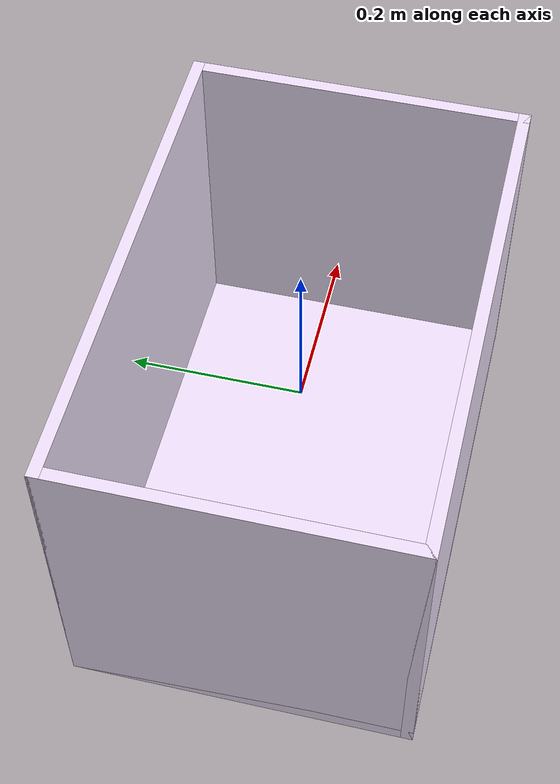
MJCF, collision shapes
<mujoco model="tote_b01_60x40x40cm">
  <asset>
    <mesh name="tote_b01_mesh" file="siemens/meshes/Tote_B01_60x40x40cm_PR_V_NVD_01.obj" scale="1 1 1"/>
    <material name="tote_b01_visual_mat" rgba="0.94 0.88 0.98 1" specular="0.25" shininess="0.18"/>
    <material name="tote_b01_collision_mat" rgba="0.94 0.88 0.98 0.30" specular="0.05" shininess="0.05"/>
  </asset>

  <worldbody>
    <body>
      <body name="object">
        <inertial pos="0 0 0" mass="0.55" diaginertia="0.0080 0.0120 0.0140"/>

        <geom name="visual"
              type="mesh"
              mesh="tote_b01_mesh"
              material="tote_b01_visual_mat"
              quat="0.707106781 0.707106781 0 0"
              contype="0"
              conaffinity="0"
              group="1"/>

        <geom name="tote_b01_col_bottom" type="box"
              pos="0 0 -0.191"
              size="0.30 0.20 0.009"
              material="tote_b01_collision_mat"
              friction="1.0 0.005 0.0001"
              group="0"/>
        <geom name="tote_b01_col_front" type="box"
              pos="0 -0.193 0"
              size="0.30 0.007 0.20"
              material="tote_b01_collision_mat"
              friction="1.0 0.005 0.0001"
              group="0"/>
        <geom name="tote_b01_col_back" type="box"
              pos="0 0.193 0"
              size="0.30 0.007 0.20"
              material="tote_b01_collision_mat"
              friction="1.0 0.005 0.0001"
              group="0"/>
        <geom name="tote_b01_col_left" type="box"
              pos="-0.293 0 0"
              size="0.007 0.20 0.20"
              material="tote_b01_collision_mat"
              friction="1.0 0.005 0.0001"
              group="0"/>
        <geom name="tote_b01_col_right" type="box"
              pos="0.293 0 0"
              size="0.007 0.20 0.20"
              material="tote_b01_collision_mat"
              friction="1.0 0.005 0.0001"
              group="0"/>
      </body>
      <site rgba="0 0 0 0" size="0.005" pos="0 0 -0.20" name="bottom_site"/>
      <site rgba="0 0 0 0" size="0.005" pos="0 0 0.20" name="top_site"/>
      <site rgba="0 0 0 0" size="0.005" pos="0.30 0.20 0" name="horizontal_radius_site"/>
    </body>
  </worldbody>
</mujoco>
